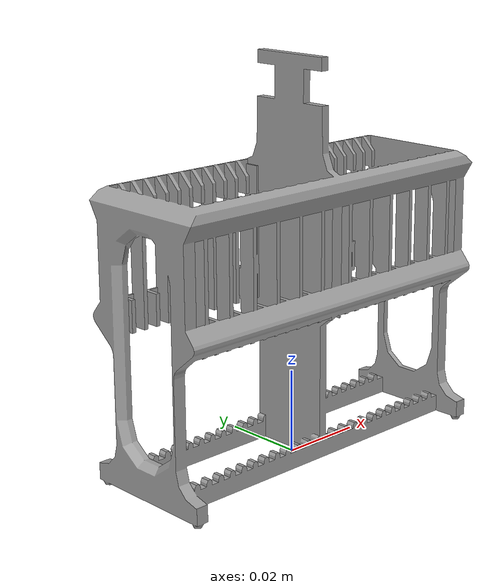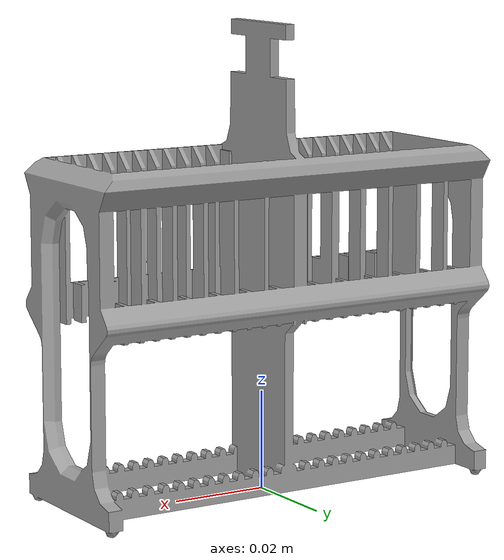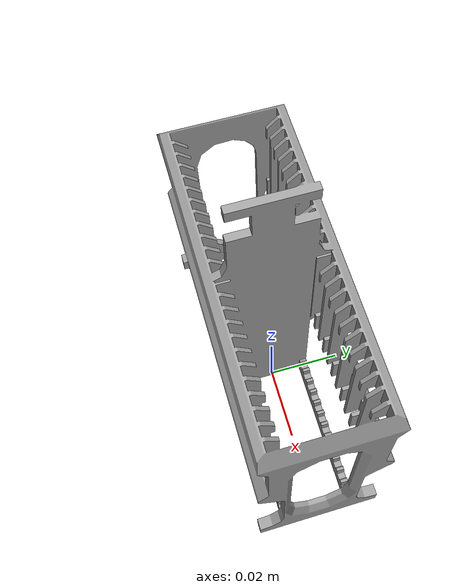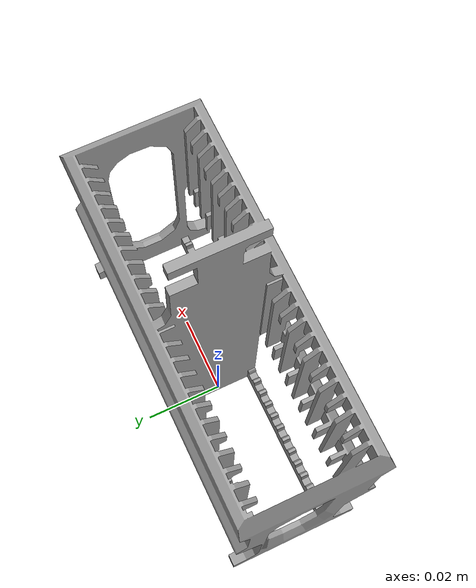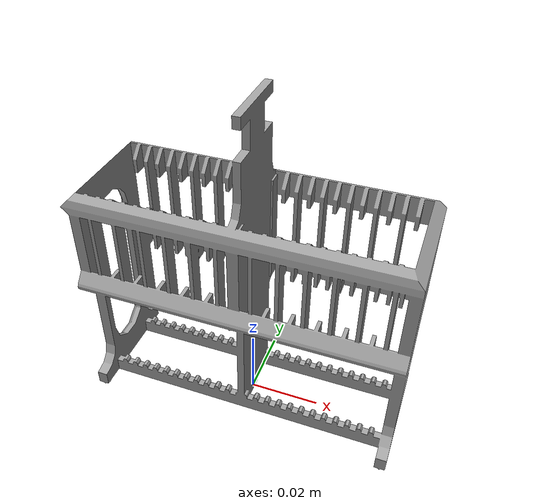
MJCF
<?xml version='1.0' encoding='utf-8'?>
<mujoco model="24-slide handled rack | static asset inspection">
  <compiler angle="radian" />
  <visual>
    <global offwidth="1000" offheight="600" />
    <headlight ambient=".4 .4 .4" diffuse=".6 .6 .6" />
  </visual>
  <asset>
    <texture type="skybox" builtin="gradient" rgb1=".92 .95 .97" rgb2=".70 .78 .84" width="512" height="3072" />
    <mesh name="rack24_0" file="meshes/rack24_0.obj" inertia="shell" />
  </asset>
  <worldbody>
    <geom type="mesh" mesh="rack24_0" rgba="0.62745098 0.62745098 0.62745098 1" contype="0" conaffinity="0" density="0" />
  </worldbody>
</mujoco>
